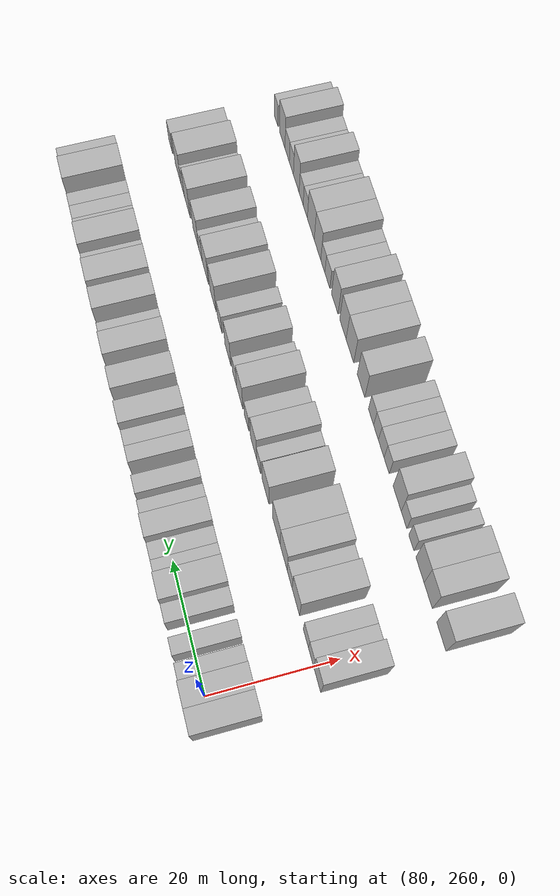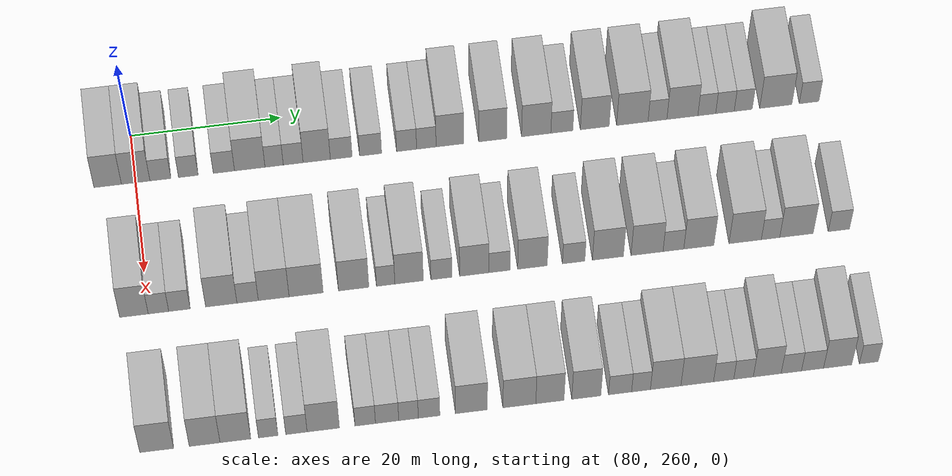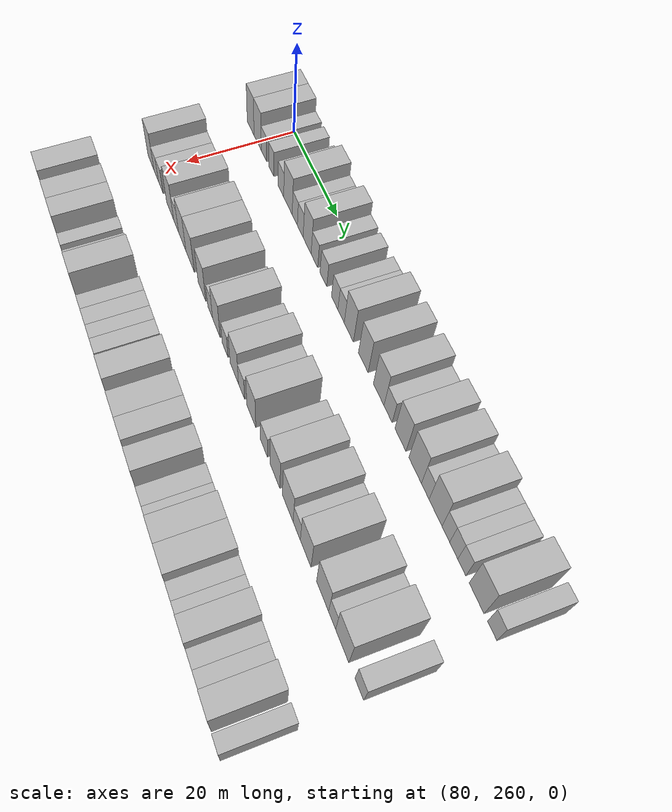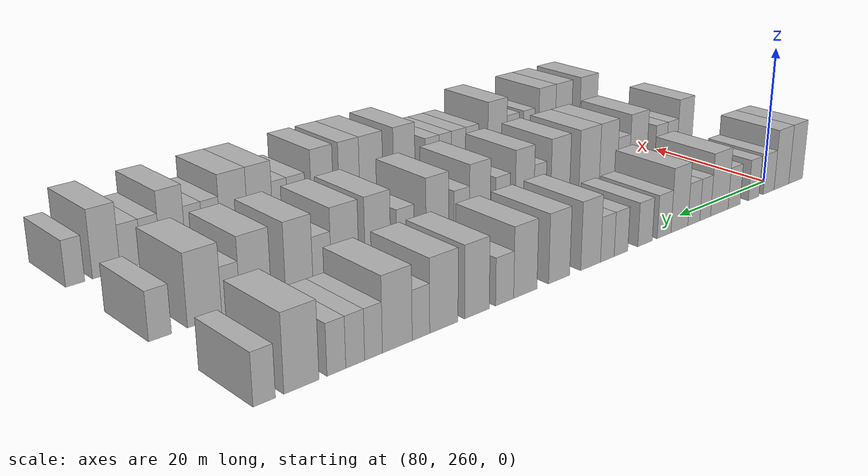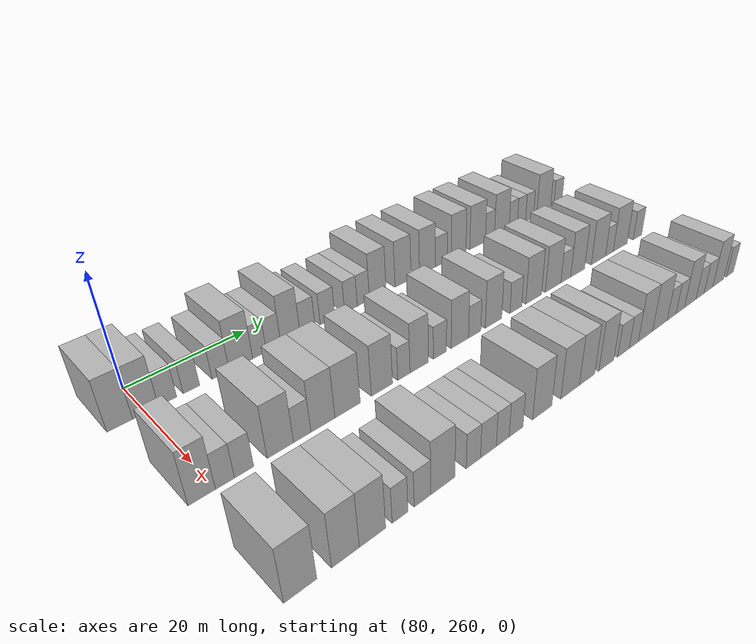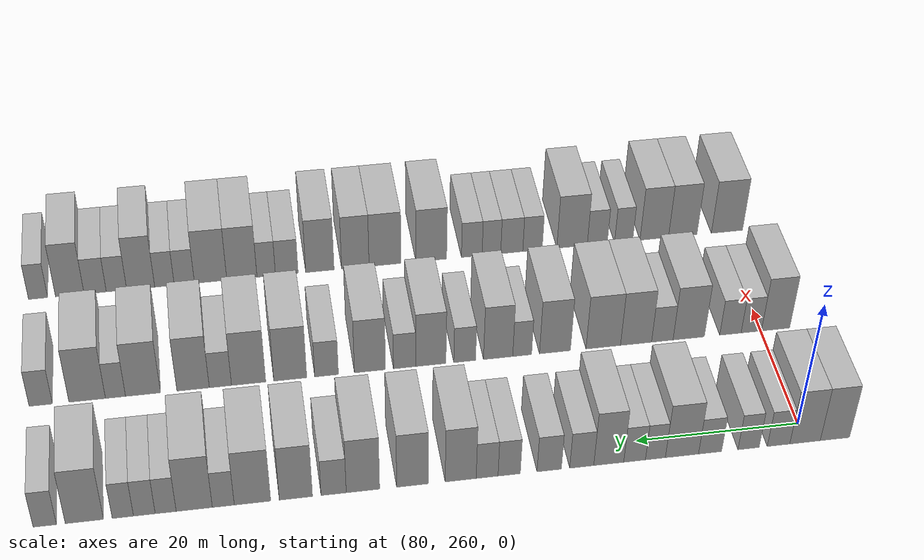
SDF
<sdf version="1.6">
 <world name="default">
  <model name="building_662">
   <static>1</static>
   <pose>82.0000 256.3636 0 0.000000 0.000000 0.000000</pose>
   <link name="link">
    <pose>0 0 4.50 0 0 0</pose>
    <collision name="collision"><geometry><box><size>10.0000 3.6264 9.0000</size></box></geometry></collision>
    <visual name="visual">
     <cast_shadows>0</cast_shadows>
     <geometry><box><size>10.0000 3.6264 9.0000</size></box></geometry>
     <material>
      <script>
       <uri>model://HANNAS_wall/materials/scripts</uri>
       <uri>model://HANNAS_wall/materials/textures</uri>
       <name>vrc/HANNAS_wall</name>
      </script>
     </material>
    </visual>
   </link>
  </model>
  <model name="building_663">
   <static>1</static>
   <pose>82.0000 260.0612 0 0.000000 0.000000 0.000000</pose>
   <link name="link">
    <pose>0 0 4.50 0 0 0</pose>
    <collision name="collision"><geometry><box><size>10.0000 3.7688 9.0000</size></box></geometry></collision>
    <visual name="visual">
     <cast_shadows>0</cast_shadows>
     <geometry><box><size>10.0000 3.7688 9.0000</size></box></geometry>
     <material>
      <script>
       <uri>model://HANNAS_wall/materials/scripts</uri>
       <uri>model://HANNAS_wall/materials/textures</uri>
       <name>vrc/HANNAS_wall</name>
      </script>
     </material>
    </visual>
   </link>
  </model>
  <model name="building_664">
   <static>1</static>
   <pose>82.0000 263.3328 0 0.000000 0.000000 0.000000</pose>
   <link name="link">
    <pose>0 0 3.00 0 0 0</pose>
    <collision name="collision"><geometry><box><size>10.0000 2.7742 6.0000</size></box></geometry></collision>
    <visual name="visual">
     <cast_shadows>0</cast_shadows>
     <geometry><box><size>10.0000 2.7742 6.0000</size></box></geometry>
     <material>
      <script>
       <uri>model://HANNAS_wall/materials/scripts</uri>
       <uri>model://HANNAS_wall/materials/textures</uri>
       <name>vrc/HANNAS_wall</name>
      </script>
     </material>
    </visual>
   </link>
  </model>
  <model name="building_665">
   <static>1</static>
   <pose>82.0000 267.0202 0 0.000000 0.000000 0.000000</pose>
   <link name="link">
    <pose>0 0 3.00 0 0 0</pose>
    <collision name="collision"><geometry><box><size>10.0000 2.6006 6.0000</size></box></geometry></collision>
    <visual name="visual">
     <cast_shadows>0</cast_shadows>
     <geometry><box><size>10.0000 2.6006 6.0000</size></box></geometry>
     <material>
      <script>
       <uri>model://HANNAS_wall/materials/scripts</uri>
       <uri>model://HANNAS_wall/materials/textures</uri>
       <name>vrc/HANNAS_wall</name>
      </script>
     </material>
    </visual>
   </link>
  </model>
  <model name="building_666">
   <static>1</static>
   <pose>82.0000 271.7305 0 0.000000 0.000000 0.000000</pose>
   <link name="link">
    <pose>0 0 3.00 0 0 0</pose>
    <collision name="collision"><geometry><box><size>10.0000 2.8201 6.0000</size></box></geometry></collision>
    <visual name="visual">
     <cast_shadows>0</cast_shadows>
     <geometry><box><size>10.0000 2.8201 6.0000</size></box></geometry>
     <material>
      <script>
       <uri>model://HANNAS_wall/materials/scripts</uri>
       <uri>model://HANNAS_wall/materials/textures</uri>
       <name>vrc/HANNAS_wall</name>
      </script>
     </material>
    </visual>
   </link>
  </model>
  <model name="building_667">
   <static>1</static>
   <pose>82.0000 275.1587 0 0.000000 0.000000 0.000000</pose>
   <link name="link">
    <pose>0 0 4.50 0 0 0</pose>
    <collision name="collision"><geometry><box><size>10.0000 4.0365 9.0000</size></box></geometry></collision>
    <visual name="visual">
     <cast_shadows>0</cast_shadows>
     <geometry><box><size>10.0000 4.0365 9.0000</size></box></geometry>
     <material>
      <script>
       <uri>model://HANNAS_wall/materials/scripts</uri>
       <uri>model://HANNAS_wall/materials/textures</uri>
       <name>vrc/HANNAS_wall</name>
      </script>
     </material>
    </visual>
   </link>
  </model>
  <model name="building_668">
   <static>1</static>
   <pose>82.0000 278.3872 0 0.000000 0.000000 0.000000</pose>
   <link name="link">
    <pose>0 0 3.00 0 0 0</pose>
    <collision name="collision"><geometry><box><size>10.0000 2.4206 6.0000</size></box></geometry></collision>
    <visual name="visual">
     <cast_shadows>0</cast_shadows>
     <geometry><box><size>10.0000 2.4206 6.0000</size></box></geometry>
     <material>
      <script>
       <uri>model://HANNAS_wall/materials/scripts</uri>
       <uri>model://HANNAS_wall/materials/textures</uri>
       <name>vrc/HANNAS_wall</name>
      </script>
     </material>
    </visual>
   </link>
  </model>
  <model name="building_669">
   <static>1</static>
   <pose>82.0000 280.9133 0 0.000000 0.000000 0.000000</pose>
   <link name="link">
    <pose>0 0 3.00 0 0 0</pose>
    <collision name="collision"><geometry><box><size>10.0000 2.6314 6.0000</size></box></geometry></collision>
    <visual name="visual">
     <cast_shadows>0</cast_shadows>
     <geometry><box><size>10.0000 2.6314 6.0000</size></box></geometry>
     <material>
      <script>
       <uri>model://HANNAS_wall/materials/scripts</uri>
       <uri>model://HANNAS_wall/materials/textures</uri>
       <name>vrc/HANNAS_wall</name>
      </script>
     </material>
    </visual>
   </link>
  </model>
  <model name="building_670">
   <static>1</static>
   <pose>82.0000 284.0356 0 0.000000 0.000000 0.000000</pose>
   <link name="link">
    <pose>0 0 4.50 0 0 0</pose>
    <collision name="collision"><geometry><box><size>10.0000 3.6133 9.0000</size></box></geometry></collision>
    <visual name="visual">
     <cast_shadows>0</cast_shadows>
     <geometry><box><size>10.0000 3.6133 9.0000</size></box></geometry>
     <material>
      <script>
       <uri>model://HANNAS_wall/materials/scripts</uri>
       <uri>model://HANNAS_wall/materials/textures</uri>
       <name>vrc/HANNAS_wall</name>
      </script>
     </material>
    </visual>
   </link>
  </model>
  <model name="building_671">
   <static>1</static>
   <pose>82.0000 287.2892 0 0.000000 0.000000 0.000000</pose>
   <link name="link">
    <pose>0 0 3.00 0 0 0</pose>
    <collision name="collision"><geometry><box><size>10.0000 2.8939 6.0000</size></box></geometry></collision>
    <visual name="visual">
     <cast_shadows>0</cast_shadows>
     <geometry><box><size>10.0000 2.8939 6.0000</size></box></geometry>
     <material>
      <script>
       <uri>model://HANNAS_wall/materials/scripts</uri>
       <uri>model://HANNAS_wall/materials/textures</uri>
       <name>vrc/HANNAS_wall</name>
      </script>
     </material>
    </visual>
   </link>
  </model>
  <model name="building_672">
   <static>1</static>
   <pose>82.0000 291.1971 0 0.000000 0.000000 0.000000</pose>
   <link name="link">
    <pose>0 0 3.00 0 0 0</pose>
    <collision name="collision"><geometry><box><size>10.0000 2.9220 6.0000</size></box></geometry></collision>
    <visual name="visual">
     <cast_shadows>0</cast_shadows>
     <geometry><box><size>10.0000 2.9220 6.0000</size></box></geometry>
     <material>
      <script>
       <uri>model://HANNAS_wall/materials/scripts</uri>
       <uri>model://HANNAS_wall/materials/textures</uri>
       <name>vrc/HANNAS_wall</name>
      </script>
     </material>
    </visual>
   </link>
  </model>
  <model name="building_673">
   <static>1</static>
   <pose>82.0000 295.9860 0 0.000000 0.000000 0.000000</pose>
   <link name="link">
    <pose>0 0 3.00 0 0 0</pose>
    <collision name="collision"><geometry><box><size>10.0000 2.6557 6.0000</size></box></geometry></collision>
    <visual name="visual">
     <cast_shadows>0</cast_shadows>
     <geometry><box><size>10.0000 2.6557 6.0000</size></box></geometry>
     <material>
      <script>
       <uri>model://HANNAS_wall/materials/scripts</uri>
       <uri>model://HANNAS_wall/materials/textures</uri>
       <name>vrc/HANNAS_wall</name>
      </script>
     </material>
    </visual>
   </link>
  </model>
  <model name="building_674">
   <static>1</static>
   <pose>82.0000 298.6152 0 0.000000 0.000000 0.000000</pose>
   <link name="link">
    <pose>0 0 3.00 0 0 0</pose>
    <collision name="collision"><geometry><box><size>10.0000 2.6028 6.0000</size></box></geometry></collision>
    <visual name="visual">
     <cast_shadows>0</cast_shadows>
     <geometry><box><size>10.0000 2.6028 6.0000</size></box></geometry>
     <material>
      <script>
       <uri>model://HANNAS_wall/materials/scripts</uri>
       <uri>model://HANNAS_wall/materials/textures</uri>
       <name>vrc/HANNAS_wall</name>
      </script>
     </material>
    </visual>
   </link>
  </model>
  <model name="building_675">
   <static>1</static>
   <pose>82.0000 301.7571 0 0.000000 0.000000 0.000000</pose>
   <link name="link">
    <pose>0 0 4.50 0 0 0</pose>
    <collision name="collision"><geometry><box><size>10.0000 3.6809 9.0000</size></box></geometry></collision>
    <visual name="visual">
     <cast_shadows>0</cast_shadows>
     <geometry><box><size>10.0000 3.6809 9.0000</size></box></geometry>
     <material>
      <script>
       <uri>model://HANNAS_wall/materials/scripts</uri>
       <uri>model://HANNAS_wall/materials/textures</uri>
       <name>vrc/HANNAS_wall</name>
      </script>
     </material>
    </visual>
   </link>
  </model>
  <model name="building_676">
   <static>1</static>
   <pose>82.0000 307.4612 0 0.000000 0.000000 0.000000</pose>
   <link name="link">
    <pose>0 0 4.50 0 0 0</pose>
    <collision name="collision"><geometry><box><size>10.0000 3.7272 9.0000</size></box></geometry></collision>
    <visual name="visual">
     <cast_shadows>0</cast_shadows>
     <geometry><box><size>10.0000 3.7272 9.0000</size></box></geometry>
     <material>
      <script>
       <uri>model://HANNAS_wall/materials/scripts</uri>
       <uri>model://HANNAS_wall/materials/textures</uri>
       <name>vrc/HANNAS_wall</name>
      </script>
     </material>
    </visual>
   </link>
  </model>
  <model name="building_677">
   <static>1</static>
   <pose>82.0000 313.2815 0 0.000000 0.000000 0.000000</pose>
   <link name="link">
    <pose>0 0 4.50 0 0 0</pose>
    <collision name="collision"><geometry><box><size>10.0000 3.9135 9.0000</size></box></geometry></collision>
    <visual name="visual">
     <cast_shadows>0</cast_shadows>
     <geometry><box><size>10.0000 3.9135 9.0000</size></box></geometry>
     <material>
      <script>
       <uri>model://HANNAS_wall/materials/scripts</uri>
       <uri>model://HANNAS_wall/materials/textures</uri>
       <name>vrc/HANNAS_wall</name>
      </script>
     </material>
    </visual>
   </link>
  </model>
  <model name="building_678">
   <static>1</static>
   <pose>82.0000 316.7109 0 0.000000 0.000000 0.000000</pose>
   <link name="link">
    <pose>0 0 3.00 0 0 0</pose>
    <collision name="collision"><geometry><box><size>10.0000 2.9453 6.0000</size></box></geometry></collision>
    <visual name="visual">
     <cast_shadows>0</cast_shadows>
     <geometry><box><size>10.0000 2.9453 6.0000</size></box></geometry>
     <material>
      <script>
       <uri>model://HANNAS_wall/materials/scripts</uri>
       <uri>model://HANNAS_wall/materials/textures</uri>
       <name>vrc/HANNAS_wall</name>
      </script>
     </material>
    </visual>
   </link>
  </model>
  <model name="building_679">
   <static>1</static>
   <pose>82.0000 321.1144 0 0.000000 0.000000 0.000000</pose>
   <link name="link">
    <pose>0 0 4.50 0 0 0</pose>
    <collision name="collision"><geometry><box><size>10.0000 3.8616 9.0000</size></box></geometry></collision>
    <visual name="visual">
     <cast_shadows>0</cast_shadows>
     <geometry><box><size>10.0000 3.8616 9.0000</size></box></geometry>
     <material>
      <script>
       <uri>model://HANNAS_wall/materials/scripts</uri>
       <uri>model://HANNAS_wall/materials/textures</uri>
       <name>vrc/HANNAS_wall</name>
      </script>
     </material>
    </visual>
   </link>
  </model>
  <model name="building_680">
   <static>1</static>
   <pose>82.0000 326.1539 0 0.000000 0.000000 0.000000</pose>
   <link name="link">
    <pose>0 0 4.50 0 0 0</pose>
    <collision name="collision"><geometry><box><size>10.0000 4.2174 9.0000</size></box></geometry></collision>
    <visual name="visual">
     <cast_shadows>0</cast_shadows>
     <geometry><box><size>10.0000 4.2174 9.0000</size></box></geometry>
     <material>
      <script>
       <uri>model://HANNAS_wall/materials/scripts</uri>
       <uri>model://HANNAS_wall/materials/textures</uri>
       <name>vrc/HANNAS_wall</name>
      </script>
     </material>
    </visual>
   </link>
  </model>
  <model name="building_681">
   <static>1</static>
   <pose>82.0000 329.5282 0 0.000000 0.000000 0.000000</pose>
   <link name="link">
    <pose>0 0 3.00 0 0 0</pose>
    <collision name="collision"><geometry><box><size>10.0000 2.5312 6.0000</size></box></geometry></collision>
    <visual name="visual">
     <cast_shadows>0</cast_shadows>
     <geometry><box><size>10.0000 2.5312 6.0000</size></box></geometry>
     <material>
      <script>
       <uri>model://HANNAS_wall/materials/scripts</uri>
       <uri>model://HANNAS_wall/materials/textures</uri>
       <name>vrc/HANNAS_wall</name>
      </script>
     </material>
    </visual>
   </link>
  </model>
  <model name="building_682">
   <static>1</static>
   <pose>82.0000 332.8726 0 0.000000 0.000000 0.000000</pose>
   <link name="link">
    <pose>0 0 4.50 0 0 0</pose>
    <collision name="collision"><geometry><box><size>10.0000 4.1577 9.0000</size></box></geometry></collision>
    <visual name="visual">
     <cast_shadows>0</cast_shadows>
     <geometry><box><size>10.0000 4.1577 9.0000</size></box></geometry>
     <material>
      <script>
       <uri>model://HANNAS_wall/materials/scripts</uri>
       <uri>model://HANNAS_wall/materials/textures</uri>
       <name>vrc/HANNAS_wall</name>
      </script>
     </material>
    </visual>
   </link>
  </model>
  <model name="building_683">
   <static>1</static>
   <pose>82.0000 336.1519 0 0.000000 0.000000 0.000000</pose>
   <link name="link">
    <pose>0 0 3.00 0 0 0</pose>
    <collision name="collision"><geometry><box><size>10.0000 2.4008 6.0000</size></box></geometry></collision>
    <visual name="visual">
     <cast_shadows>0</cast_shadows>
     <geometry><box><size>10.0000 2.4008 6.0000</size></box></geometry>
     <material>
      <script>
       <uri>model://HANNAS_wall/materials/scripts</uri>
       <uri>model://HANNAS_wall/materials/textures</uri>
       <name>vrc/HANNAS_wall</name>
      </script>
     </material>
    </visual>
   </link>
  </model>
  <model name="building_684">
   <static>1</static>
   <pose>82.0000 338.5974 0 0.000000 0.000000 0.000000</pose>
   <link name="link">
    <pose>0 0 3.00 0 0 0</pose>
    <collision name="collision"><geometry><box><size>10.0000 2.4902 6.0000</size></box></geometry></collision>
    <visual name="visual">
     <cast_shadows>0</cast_shadows>
     <geometry><box><size>10.0000 2.4902 6.0000</size></box></geometry>
     <material>
      <script>
       <uri>model://HANNAS_wall/materials/scripts</uri>
       <uri>model://HANNAS_wall/materials/textures</uri>
       <name>vrc/HANNAS_wall</name>
      </script>
     </material>
    </visual>
   </link>
  </model>
  <model name="building_685">
   <static>1</static>
   <pose>82.0000 341.0563 0 0.000000 0.000000 0.000000</pose>
   <link name="link">
    <pose>0 0 3.00 0 0 0</pose>
    <collision name="collision"><geometry><box><size>10.0000 2.4276 6.0000</size></box></geometry></collision>
    <visual name="visual">
     <cast_shadows>0</cast_shadows>
     <geometry><box><size>10.0000 2.4276 6.0000</size></box></geometry>
     <material>
      <script>
       <uri>model://HANNAS_wall/materials/scripts</uri>
       <uri>model://HANNAS_wall/materials/textures</uri>
       <name>vrc/HANNAS_wall</name>
      </script>
     </material>
    </visual>
   </link>
  </model>
  <model name="building_686">
   <static>1</static>
   <pose>82.0000 345.4383 0 0.000000 0.000000 0.000000</pose>
   <link name="link">
    <pose>0 0 4.50 0 0 0</pose>
    <collision name="collision"><geometry><box><size>10.0000 4.3365 9.0000</size></box></geometry></collision>
    <visual name="visual">
     <cast_shadows>0</cast_shadows>
     <geometry><box><size>10.0000 4.3365 9.0000</size></box></geometry>
     <material>
      <script>
       <uri>model://HANNAS_wall/materials/scripts</uri>
       <uri>model://HANNAS_wall/materials/textures</uri>
       <name>vrc/HANNAS_wall</name>
      </script>
     </material>
    </visual>
   </link>
  </model>
  <model name="building_687">
   <static>1</static>
   <pose>82.0000 349.9293 0 0.000000 0.000000 0.000000</pose>
   <link name="link">
    <pose>0 0 3.00 0 0 0</pose>
    <collision name="collision"><geometry><box><size>10.0000 2.6455 6.0000</size></box></geometry></collision>
    <visual name="visual">
     <cast_shadows>0</cast_shadows>
     <geometry><box><size>10.0000 2.6455 6.0000</size></box></geometry>
     <material>
      <script>
       <uri>model://HANNAS_wall/materials/scripts</uri>
       <uri>model://HANNAS_wall/materials/textures</uri>
       <name>vrc/HANNAS_wall</name>
      </script>
     </material>
    </visual>
   </link>
  </model>
  <model name="building_836">
   <static>1</static>
   <pose>101.0000 258.0987 0 0.000000 0.000000 0.000000</pose>
   <link name="link">
    <pose>0 0 4.50 0 0 0</pose>
    <collision name="collision"><geometry><box><size>10.0000 3.7096 9.0000</size></box></geometry></collision>
    <visual name="visual">
     <cast_shadows>0</cast_shadows>
     <geometry><box><size>10.0000 3.7096 9.0000</size></box></geometry>
     <material>
      <script>
       <uri>model://HANNAS_wall/materials/scripts</uri>
       <uri>model://HANNAS_wall/materials/textures</uri>
       <name>vrc/HANNAS_wall</name>
      </script>
     </material>
    </visual>
   </link>
  </model>
  <model name="building_837">
   <static>1</static>
   <pose>101.0000 261.2831 0 0.000000 0.000000 0.000000</pose>
   <link name="link">
    <pose>0 0 3.00 0 0 0</pose>
    <collision name="collision"><geometry><box><size>10.0000 2.6592 6.0000</size></box></geometry></collision>
    <visual name="visual">
     <cast_shadows>0</cast_shadows>
     <geometry><box><size>10.0000 2.6592 6.0000</size></box></geometry>
     <material>
      <script>
       <uri>model://HANNAS_wall/materials/scripts</uri>
       <uri>model://HANNAS_wall/materials/textures</uri>
       <name>vrc/HANNAS_wall</name>
      </script>
     </material>
    </visual>
   </link>
  </model>
  <model name="building_838">
   <static>1</static>
   <pose>101.0000 264.0105 0 0.000000 0.000000 0.000000</pose>
   <link name="link">
    <pose>0 0 3.00 0 0 0</pose>
    <collision name="collision"><geometry><box><size>10.0000 2.7955 6.0000</size></box></geometry></collision>
    <visual name="visual">
     <cast_shadows>0</cast_shadows>
     <geometry><box><size>10.0000 2.7955 6.0000</size></box></geometry>
     <material>
      <script>
       <uri>model://HANNAS_wall/materials/scripts</uri>
       <uri>model://HANNAS_wall/materials/textures</uri>
       <name>vrc/HANNAS_wall</name>
      </script>
     </material>
    </visual>
   </link>
  </model>
  <model name="building_839">
   <static>1</static>
   <pose>101.0000 269.4473 0 0.000000 0.000000 0.000000</pose>
   <link name="link">
    <pose>0 0 4.50 0 0 0</pose>
    <collision name="collision"><geometry><box><size>10.0000 4.0781 9.0000</size></box></geometry></collision>
    <visual name="visual">
     <cast_shadows>0</cast_shadows>
     <geometry><box><size>10.0000 4.0781 9.0000</size></box></geometry>
     <material>
      <script>
       <uri>model://HANNAS_wall/materials/scripts</uri>
       <uri>model://HANNAS_wall/materials/textures</uri>
       <name>vrc/HANNAS_wall</name>
      </script>
     </material>
    </visual>
   </link>
  </model>
  <model name="building_840">
   <static>1</static>
   <pose>101.0000 272.8783 0 0.000000 0.000000 0.000000</pose>
   <link name="link">
    <pose>0 0 3.00 0 0 0</pose>
    <collision name="collision"><geometry><box><size>10.0000 2.7840 6.0000</size></box></geometry></collision>
    <visual name="visual">
     <cast_shadows>0</cast_shadows>
     <geometry><box><size>10.0000 2.7840 6.0000</size></box></geometry>
     <material>
      <script>
       <uri>model://HANNAS_wall/materials/scripts</uri>
       <uri>model://HANNAS_wall/materials/textures</uri>
       <name>vrc/HANNAS_wall</name>
      </script>
     </material>
    </visual>
   </link>
  </model>
  <model name="building_841">
   <static>1</static>
   <pose>101.0000 276.2749 0 0.000000 0.000000 0.000000</pose>
   <link name="link">
    <pose>0 0 4.50 0 0 0</pose>
    <collision name="collision"><geometry><box><size>10.0000 4.0090 9.0000</size></box></geometry></collision>
    <visual name="visual">
     <cast_shadows>0</cast_shadows>
     <geometry><box><size>10.0000 4.0090 9.0000</size></box></geometry>
     <material>
      <script>
       <uri>model://HANNAS_wall/materials/scripts</uri>
       <uri>model://HANNAS_wall/materials/textures</uri>
       <name>vrc/HANNAS_wall</name>
      </script>
     </material>
    </visual>
   </link>
  </model>
  <model name="building_842">
   <static>1</static>
   <pose>101.0000 280.5014 0 0.000000 0.000000 0.000000</pose>
   <link name="link">
    <pose>0 0 4.50 0 0 0</pose>
    <collision name="collision"><geometry><box><size>10.0000 4.4440 9.0000</size></box></geometry></collision>
    <visual name="visual">
     <cast_shadows>0</cast_shadows>
     <geometry><box><size>10.0000 4.4440 9.0000</size></box></geometry>
     <material>
      <script>
       <uri>model://HANNAS_wall/materials/scripts</uri>
       <uri>model://HANNAS_wall/materials/textures</uri>
       <name>vrc/HANNAS_wall</name>
      </script>
     </material>
    </visual>
   </link>
  </model>
  <model name="building_843">
   <static>1</static>
   <pose>101.0000 286.7053 0 0.000000 0.000000 0.000000</pose>
   <link name="link">
    <pose>0 0 4.50 0 0 0</pose>
    <collision name="collision"><geometry><box><size>10.0000 3.9637 9.0000</size></box></geometry></collision>
    <visual name="visual">
     <cast_shadows>0</cast_shadows>
     <geometry><box><size>10.0000 3.9637 9.0000</size></box></geometry>
     <material>
      <script>
       <uri>model://HANNAS_wall/materials/scripts</uri>
       <uri>model://HANNAS_wall/materials/textures</uri>
       <name>vrc/HANNAS_wall</name>
      </script>
     </material>
    </visual>
   </link>
  </model>
  <model name="building_844">
   <static>1</static>
   <pose>101.0000 290.8898 0 0.000000 0.000000 0.000000</pose>
   <link name="link">
    <pose>0 0 3.00 0 0 0</pose>
    <collision name="collision"><geometry><box><size>10.0000 2.4054 6.0000</size></box></geometry></collision>
    <visual name="visual">
     <cast_shadows>0</cast_shadows>
     <geometry><box><size>10.0000 2.4054 6.0000</size></box></geometry>
     <material>
      <script>
       <uri>model://HANNAS_wall/materials/scripts</uri>
       <uri>model://HANNAS_wall/materials/textures</uri>
       <name>vrc/HANNAS_wall</name>
      </script>
     </material>
    </visual>
   </link>
  </model>
  <model name="building_845">
   <static>1</static>
   <pose>101.0000 293.9519 0 0.000000 0.000000 0.000000</pose>
   <link name="link">
    <pose>0 0 4.50 0 0 0</pose>
    <collision name="collision"><geometry><box><size>10.0000 3.7187 9.0000</size></box></geometry></collision>
    <visual name="visual">
     <cast_shadows>0</cast_shadows>
     <geometry><box><size>10.0000 3.7187 9.0000</size></box></geometry>
     <material>
      <script>
       <uri>model://HANNAS_wall/materials/scripts</uri>
       <uri>model://HANNAS_wall/materials/textures</uri>
       <name>vrc/HANNAS_wall</name>
      </script>
     </material>
    </visual>
   </link>
  </model>
  <model name="building_846">
   <static>1</static>
   <pose>101.0000 298.1905 0 0.000000 0.000000 0.000000</pose>
   <link name="link">
    <pose>0 0 3.00 0 0 0</pose>
    <collision name="collision"><geometry><box><size>10.0000 2.7585 6.0000</size></box></geometry></collision>
    <visual name="visual">
     <cast_shadows>0</cast_shadows>
     <geometry><box><size>10.0000 2.7585 6.0000</size></box></geometry>
     <material>
      <script>
       <uri>model://HANNAS_wall/materials/scripts</uri>
       <uri>model://HANNAS_wall/materials/textures</uri>
       <name>vrc/HANNAS_wall</name>
      </script>
     </material>
    </visual>
   </link>
  </model>
  <model name="building_847">
   <static>1</static>
   <pose>101.0000 302.4835 0 0.000000 0.000000 0.000000</pose>
   <link name="link">
    <pose>0 0 4.50 0 0 0</pose>
    <collision name="collision"><geometry><box><size>10.0000 3.8274 9.0000</size></box></geometry></collision>
    <visual name="visual">
     <cast_shadows>0</cast_shadows>
     <geometry><box><size>10.0000 3.8274 9.0000</size></box></geometry>
     <material>
      <script>
       <uri>model://HANNAS_wall/materials/scripts</uri>
       <uri>model://HANNAS_wall/materials/textures</uri>
       <name>vrc/HANNAS_wall</name>
      </script>
     </material>
    </visual>
   </link>
  </model>
  <model name="building_848">
   <static>1</static>
   <pose>101.0000 305.7885 0 0.000000 0.000000 0.000000</pose>
   <link name="link">
    <pose>0 0 3.00 0 0 0</pose>
    <collision name="collision"><geometry><box><size>10.0000 2.7826 6.0000</size></box></geometry></collision>
    <visual name="visual">
     <cast_shadows>0</cast_shadows>
     <geometry><box><size>10.0000 2.7826 6.0000</size></box></geometry>
     <material>
      <script>
       <uri>model://HANNAS_wall/materials/scripts</uri>
       <uri>model://HANNAS_wall/materials/textures</uri>
       <name>vrc/HANNAS_wall</name>
      </script>
     </material>
    </visual>
   </link>
  </model>
  <model name="building_849">
   <static>1</static>
   <pose>101.0000 310.1236 0 0.000000 0.000000 0.000000</pose>
   <link name="link">
    <pose>0 0 4.50 0 0 0</pose>
    <collision name="collision"><geometry><box><size>10.0000 3.8875 9.0000</size></box></geometry></collision>
    <visual name="visual">
     <cast_shadows>0</cast_shadows>
     <geometry><box><size>10.0000 3.8875 9.0000</size></box></geometry>
     <material>
      <script>
       <uri>model://HANNAS_wall/materials/scripts</uri>
       <uri>model://HANNAS_wall/materials/textures</uri>
       <name>vrc/HANNAS_wall</name>
      </script>
     </material>
    </visual>
   </link>
  </model>
  <model name="building_850">
   <static>1</static>
   <pose>101.0000 315.5400 0 0.000000 0.000000 0.000000</pose>
   <link name="link">
    <pose>0 0 3.00 0 0 0</pose>
    <collision name="collision"><geometry><box><size>10.0000 2.9453 6.0000</size></box></geometry></collision>
    <visual name="visual">
     <cast_shadows>0</cast_shadows>
     <geometry><box><size>10.0000 2.9453 6.0000</size></box></geometry>
     <material>
      <script>
       <uri>model://HANNAS_wall/materials/scripts</uri>
       <uri>model://HANNAS_wall/materials/textures</uri>
       <name>vrc/HANNAS_wall</name>
      </script>
     </material>
    </visual>
   </link>
  </model>
  <model name="building_851">
   <static>1</static>
   <pose>101.0000 320.0551 0 0.000000 0.000000 0.000000</pose>
   <link name="link">
    <pose>0 0 4.50 0 0 0</pose>
    <collision name="collision"><geometry><box><size>10.0000 4.0850 9.0000</size></box></geometry></collision>
    <visual name="visual">
     <cast_shadows>0</cast_shadows>
     <geometry><box><size>10.0000 4.0850 9.0000</size></box></geometry>
     <material>
      <script>
       <uri>model://HANNAS_wall/materials/scripts</uri>
       <uri>model://HANNAS_wall/materials/textures</uri>
       <name>vrc/HANNAS_wall</name>
      </script>
     </material>
    </visual>
   </link>
  </model>
  <model name="building_852">
   <static>1</static>
   <pose>101.0000 325.2088 0 0.000000 0.000000 0.000000</pose>
   <link name="link">
    <pose>0 0 4.50 0 0 0</pose>
    <collision name="collision"><geometry><box><size>10.0000 4.2223 9.0000</size></box></geometry></collision>
    <visual name="visual">
     <cast_shadows>0</cast_shadows>
     <geometry><box><size>10.0000 4.2223 9.0000</size></box></geometry>
     <material>
      <script>
       <uri>model://HANNAS_wall/materials/scripts</uri>
       <uri>model://HANNAS_wall/materials/textures</uri>
       <name>vrc/HANNAS_wall</name>
      </script>
     </material>
    </visual>
   </link>
  </model>
  <model name="building_853">
   <static>1</static>
   <pose>101.0000 328.6884 0 0.000000 0.000000 0.000000</pose>
   <link name="link">
    <pose>0 0 3.00 0 0 0</pose>
    <collision name="collision"><geometry><box><size>10.0000 2.7369 6.0000</size></box></geometry></collision>
    <visual name="visual">
     <cast_shadows>0</cast_shadows>
     <geometry><box><size>10.0000 2.7369 6.0000</size></box></geometry>
     <material>
      <script>
       <uri>model://HANNAS_wall/materials/scripts</uri>
       <uri>model://HANNAS_wall/materials/textures</uri>
       <name>vrc/HANNAS_wall</name>
      </script>
     </material>
    </visual>
   </link>
  </model>
  <model name="building_854">
   <static>1</static>
   <pose>101.0000 332.0452 0 0.000000 0.000000 0.000000</pose>
   <link name="link">
    <pose>0 0 4.50 0 0 0</pose>
    <collision name="collision"><geometry><box><size>10.0000 3.9769 9.0000</size></box></geometry></collision>
    <visual name="visual">
     <cast_shadows>0</cast_shadows>
     <geometry><box><size>10.0000 3.9769 9.0000</size></box></geometry>
     <material>
      <script>
       <uri>model://HANNAS_wall/materials/scripts</uri>
       <uri>model://HANNAS_wall/materials/textures</uri>
       <name>vrc/HANNAS_wall</name>
      </script>
     </material>
    </visual>
   </link>
  </model>
  <model name="building_855">
   <static>1</static>
   <pose>101.0000 338.1712 0 0.000000 0.000000 0.000000</pose>
   <link name="link">
    <pose>0 0 4.50 0 0 0</pose>
    <collision name="collision"><geometry><box><size>10.0000 4.2751 9.0000</size></box></geometry></collision>
    <visual name="visual">
     <cast_shadows>0</cast_shadows>
     <geometry><box><size>10.0000 4.2751 9.0000</size></box></geometry>
     <material>
      <script>
       <uri>model://HANNAS_wall/materials/scripts</uri>
       <uri>model://HANNAS_wall/materials/textures</uri>
       <name>vrc/HANNAS_wall</name>
      </script>
     </material>
    </visual>
   </link>
  </model>
  <model name="building_856">
   <static>1</static>
   <pose>101.0000 341.5302 0 0.000000 0.000000 0.000000</pose>
   <link name="link">
    <pose>0 0 3.00 0 0 0</pose>
    <collision name="collision"><geometry><box><size>10.0000 2.4428 6.0000</size></box></geometry></collision>
    <visual name="visual">
     <cast_shadows>0</cast_shadows>
     <geometry><box><size>10.0000 2.4428 6.0000</size></box></geometry>
     <material>
      <script>
       <uri>model://HANNAS_wall/materials/scripts</uri>
       <uri>model://HANNAS_wall/materials/textures</uri>
       <name>vrc/HANNAS_wall</name>
      </script>
     </material>
    </visual>
   </link>
  </model>
  <model name="building_857">
   <static>1</static>
   <pose>101.0000 344.9636 0 0.000000 0.000000 0.000000</pose>
   <link name="link">
    <pose>0 0 4.50 0 0 0</pose>
    <collision name="collision"><geometry><box><size>10.0000 4.4240 9.0000</size></box></geometry></collision>
    <visual name="visual">
     <cast_shadows>0</cast_shadows>
     <geometry><box><size>10.0000 4.4240 9.0000</size></box></geometry>
     <material>
      <script>
       <uri>model://HANNAS_wall/materials/scripts</uri>
       <uri>model://HANNAS_wall/materials/textures</uri>
       <name>vrc/HANNAS_wall</name>
      </script>
     </material>
    </visual>
   </link>
  </model>
  <model name="building_858">
   <static>1</static>
   <pose>101.0000 350.5829 0 0.000000 0.000000 0.000000</pose>
   <link name="link">
    <pose>0 0 3.00 0 0 0</pose>
    <collision name="collision"><geometry><box><size>10.0000 2.8147 6.0000</size></box></geometry></collision>
    <visual name="visual">
     <cast_shadows>0</cast_shadows>
     <geometry><box><size>10.0000 2.8147 6.0000</size></box></geometry>
     <material>
      <script>
       <uri>model://HANNAS_wall/materials/scripts</uri>
       <uri>model://HANNAS_wall/materials/textures</uri>
       <name>vrc/HANNAS_wall</name>
      </script>
     </material>
    </visual>
   </link>
  </model>
  <model name="building_1012">
   <static>1</static>
   <pose>120.0000 259.2658 0 0.000000 0.000000 0.000000</pose>
   <link name="link">
    <pose>0 0 4.50 0 0 0</pose>
    <collision name="collision"><geometry><box><size>10.0000 4.3226 9.0000</size></box></geometry></collision>
    <visual name="visual">
     <cast_shadows>0</cast_shadows>
     <geometry><box><size>10.0000 4.3226 9.0000</size></box></geometry>
     <material>
      <script>
       <uri>model://HANNAS_wall/materials/scripts</uri>
       <uri>model://HANNAS_wall/materials/textures</uri>
       <name>vrc/HANNAS_wall</name>
      </script>
     </material>
    </visual>
   </link>
  </model>
  <model name="building_1013">
   <static>1</static>
   <pose>120.0000 265.3899 0 0.000000 0.000000 0.000000</pose>
   <link name="link">
    <pose>0 0 4.50 0 0 0</pose>
    <collision name="collision"><geometry><box><size>10.0000 3.9255 9.0000</size></box></geometry></collision>
    <visual name="visual">
     <cast_shadows>0</cast_shadows>
     <geometry><box><size>10.0000 3.9255 9.0000</size></box></geometry>
     <material>
      <script>
       <uri>model://HANNAS_wall/materials/scripts</uri>
       <uri>model://HANNAS_wall/materials/textures</uri>
       <name>vrc/HANNAS_wall</name>
      </script>
     </material>
    </visual>
   </link>
  </model>
  <model name="building_1014">
   <static>1</static>
   <pose>120.0000 269.3155 0 0.000000 0.000000 0.000000</pose>
   <link name="link">
    <pose>0 0 4.50 0 0 0</pose>
    <collision name="collision"><geometry><box><size>10.0000 3.9256 9.0000</size></box></geometry></collision>
    <visual name="visual">
     <cast_shadows>0</cast_shadows>
     <geometry><box><size>10.0000 3.9256 9.0000</size></box></geometry>
     <material>
      <script>
       <uri>model://HANNAS_wall/materials/scripts</uri>
       <uri>model://HANNAS_wall/materials/textures</uri>
       <name>vrc/HANNAS_wall</name>
      </script>
     </material>
    </visual>
   </link>
  </model>
  <model name="building_1015">
   <static>1</static>
   <pose>120.0000 273.5212 0 0.000000 0.000000 0.000000</pose>
   <link name="link">
    <pose>0 0 3.00 0 0 0</pose>
    <collision name="collision"><geometry><box><size>10.0000 2.4858 6.0000</size></box></geometry></collision>
    <visual name="visual">
     <cast_shadows>0</cast_shadows>
     <geometry><box><size>10.0000 2.4858 6.0000</size></box></geometry>
     <material>
      <script>
       <uri>model://HANNAS_wall/materials/scripts</uri>
       <uri>model://HANNAS_wall/materials/textures</uri>
       <name>vrc/HANNAS_wall</name>
      </script>
     </material>
    </visual>
   </link>
  </model>
  <model name="building_1016">
   <static>1</static>
   <pose>120.0000 277.1308 0 0.000000 0.000000 0.000000</pose>
   <link name="link">
    <pose>0 0 3.00 0 0 0</pose>
    <collision name="collision"><geometry><box><size>10.0000 2.7335 6.0000</size></box></geometry></collision>
    <visual name="visual">
     <cast_shadows>0</cast_shadows>
     <geometry><box><size>10.0000 2.7335 6.0000</size></box></geometry>
     <material>
      <script>
       <uri>model://HANNAS_wall/materials/scripts</uri>
       <uri>model://HANNAS_wall/materials/textures</uri>
       <name>vrc/HANNAS_wall</name>
      </script>
     </material>
    </visual>
   </link>
  </model>
  <model name="building_1017">
   <static>1</static>
   <pose>120.0000 280.5683 0 0.000000 0.000000 0.000000</pose>
   <link name="link">
    <pose>0 0 4.50 0 0 0</pose>
    <collision name="collision"><geometry><box><size>10.0000 4.1413 9.0000</size></box></geometry></collision>
    <visual name="visual">
     <cast_shadows>0</cast_shadows>
     <geometry><box><size>10.0000 4.1413 9.0000</size></box></geometry>
     <material>
      <script>
       <uri>model://HANNAS_wall/materials/scripts</uri>
       <uri>model://HANNAS_wall/materials/textures</uri>
       <name>vrc/HANNAS_wall</name>
      </script>
     </material>
    </visual>
   </link>
  </model>
  <model name="building_1018">
   <static>1</static>
   <pose>120.0000 285.9518 0 0.000000 0.000000 0.000000</pose>
   <link name="link">
    <pose>0 0 3.00 0 0 0</pose>
    <collision name="collision"><geometry><box><size>10.0000 2.6258 6.0000</size></box></geometry></collision>
    <visual name="visual">
     <cast_shadows>0</cast_shadows>
     <geometry><box><size>10.0000 2.6258 6.0000</size></box></geometry>
     <material>
      <script>
       <uri>model://HANNAS_wall/materials/scripts</uri>
       <uri>model://HANNAS_wall/materials/textures</uri>
       <name>vrc/HANNAS_wall</name>
      </script>
     </material>
    </visual>
   </link>
  </model>
  <model name="building_1019">
   <static>1</static>
   <pose>120.0000 288.7584 0 0.000000 0.000000 0.000000</pose>
   <link name="link">
    <pose>0 0 3.00 0 0 0</pose>
    <collision name="collision"><geometry><box><size>10.0000 2.9873 6.0000</size></box></geometry></collision>
    <visual name="visual">
     <cast_shadows>0</cast_shadows>
     <geometry><box><size>10.0000 2.9873 6.0000</size></box></geometry>
     <material>
      <script>
       <uri>model://HANNAS_wall/materials/scripts</uri>
       <uri>model://HANNAS_wall/materials/textures</uri>
       <name>vrc/HANNAS_wall</name>
      </script>
     </material>
    </visual>
   </link>
  </model>
  <model name="building_1020">
   <static>1</static>
   <pose>120.0000 291.5106 0 0.000000 0.000000 0.000000</pose>
   <link name="link">
    <pose>0 0 3.00 0 0 0</pose>
    <collision name="collision"><geometry><box><size>10.0000 2.5172 6.0000</size></box></geometry></collision>
    <visual name="visual">
     <cast_shadows>0</cast_shadows>
     <geometry><box><size>10.0000 2.5172 6.0000</size></box></geometry>
     <material>
      <script>
       <uri>model://HANNAS_wall/materials/scripts</uri>
       <uri>model://HANNAS_wall/materials/textures</uri>
       <name>vrc/HANNAS_wall</name>
      </script>
     </material>
    </visual>
   </link>
  </model>
  <model name="building_1021">
   <static>1</static>
   <pose>120.0000 294.1570 0 0.000000 0.000000 0.000000</pose>
   <link name="link">
    <pose>0 0 3.00 0 0 0</pose>
    <collision name="collision"><geometry><box><size>10.0000 2.7755 6.0000</size></box></geometry></collision>
    <visual name="visual">
     <cast_shadows>0</cast_shadows>
     <geometry><box><size>10.0000 2.7755 6.0000</size></box></geometry>
     <material>
      <script>
       <uri>model://HANNAS_wall/materials/scripts</uri>
       <uri>model://HANNAS_wall/materials/textures</uri>
       <name>vrc/HANNAS_wall</name>
      </script>
     </material>
    </visual>
   </link>
  </model>
  <model name="building_1022">
   <static>1</static>
   <pose>120.0000 299.6010 0 0.000000 0.000000 0.000000</pose>
   <link name="link">
    <pose>0 0 4.50 0 0 0</pose>
    <collision name="collision"><geometry><box><size>10.0000 4.1125 9.0000</size></box></geometry></collision>
    <visual name="visual">
     <cast_shadows>0</cast_shadows>
     <geometry><box><size>10.0000 4.1125 9.0000</size></box></geometry>
     <material>
      <script>
       <uri>model://HANNAS_wall/materials/scripts</uri>
       <uri>model://HANNAS_wall/materials/textures</uri>
       <name>vrc/HANNAS_wall</name>
      </script>
     </material>
    </visual>
   </link>
  </model>
  <model name="building_1023">
   <static>1</static>
   <pose>120.0000 305.7826 0 0.000000 0.000000 0.000000</pose>
   <link name="link">
    <pose>0 0 4.50 0 0 0</pose>
    <collision name="collision"><geometry><box><size>10.0000 4.2509 9.0000</size></box></geometry></collision>
    <visual name="visual">
     <cast_shadows>0</cast_shadows>
     <geometry><box><size>10.0000 4.2509 9.0000</size></box></geometry>
     <material>
      <script>
       <uri>model://HANNAS_wall/materials/scripts</uri>
       <uri>model://HANNAS_wall/materials/textures</uri>
       <name>vrc/HANNAS_wall</name>
      </script>
     </material>
    </visual>
   </link>
  </model>
  <model name="building_1024">
   <static>1</static>
   <pose>120.0000 309.7296 0 0.000000 0.000000 0.000000</pose>
   <link name="link">
    <pose>0 0 4.50 0 0 0</pose>
    <collision name="collision"><geometry><box><size>10.0000 3.6431 9.0000</size></box></geometry></collision>
    <visual name="visual">
     <cast_shadows>0</cast_shadows>
     <geometry><box><size>10.0000 3.6431 9.0000</size></box></geometry>
     <material>
      <script>
       <uri>model://HANNAS_wall/materials/scripts</uri>
       <uri>model://HANNAS_wall/materials/textures</uri>
       <name>vrc/HANNAS_wall</name>
      </script>
     </material>
    </visual>
   </link>
  </model>
  <model name="building_1025">
   <static>1</static>
   <pose>120.0000 314.4284 0 0.000000 0.000000 0.000000</pose>
   <link name="link">
    <pose>0 0 4.50 0 0 0</pose>
    <collision name="collision"><geometry><box><size>10.0000 3.7546 9.0000</size></box></geometry></collision>
    <visual name="visual">
     <cast_shadows>0</cast_shadows>
     <geometry><box><size>10.0000 3.7546 9.0000</size></box></geometry>
     <material>
      <script>
       <uri>model://HANNAS_wall/materials/scripts</uri>
       <uri>model://HANNAS_wall/materials/textures</uri>
       <name>vrc/HANNAS_wall</name>
      </script>
     </material>
    </visual>
   </link>
  </model>
  <model name="building_1026">
   <static>1</static>
   <pose>120.0000 318.7981 0 0.000000 0.000000 0.000000</pose>
   <link name="link">
    <pose>0 0 3.00 0 0 0</pose>
    <collision name="collision"><geometry><box><size>10.0000 2.9849 6.0000</size></box></geometry></collision>
    <visual name="visual">
     <cast_shadows>0</cast_shadows>
     <geometry><box><size>10.0000 2.9849 6.0000</size></box></geometry>
     <material>
      <script>
       <uri>model://HANNAS_wall/materials/scripts</uri>
       <uri>model://HANNAS_wall/materials/textures</uri>
       <name>vrc/HANNAS_wall</name>
      </script>
     </material>
    </visual>
   </link>
  </model>
  <model name="building_1027">
   <static>1</static>
   <pose>120.0000 321.5077 0 0.000000 0.000000 0.000000</pose>
   <link name="link">
    <pose>0 0 3.00 0 0 0</pose>
    <collision name="collision"><geometry><box><size>10.0000 2.4342 6.0000</size></box></geometry></collision>
    <visual name="visual">
     <cast_shadows>0</cast_shadows>
     <geometry><box><size>10.0000 2.4342 6.0000</size></box></geometry>
     <material>
      <script>
       <uri>model://HANNAS_wall/materials/scripts</uri>
       <uri>model://HANNAS_wall/materials/textures</uri>
       <name>vrc/HANNAS_wall</name>
      </script>
     </material>
    </visual>
   </link>
  </model>
  <model name="building_1028">
   <static>1</static>
   <pose>120.0000 324.7024 0 0.000000 0.000000 0.000000</pose>
   <link name="link">
    <pose>0 0 4.50 0 0 0</pose>
    <collision name="collision"><geometry><box><size>10.0000 3.9551 9.0000</size></box></geometry></collision>
    <visual name="visual">
     <cast_shadows>0</cast_shadows>
     <geometry><box><size>10.0000 3.9551 9.0000</size></box></geometry>
     <material>
      <script>
       <uri>model://HANNAS_wall/materials/scripts</uri>
       <uri>model://HANNAS_wall/materials/textures</uri>
       <name>vrc/HANNAS_wall</name>
      </script>
     </material>
    </visual>
   </link>
  </model>
  <model name="building_1029">
   <static>1</static>
   <pose>120.0000 328.7961 0 0.000000 0.000000 0.000000</pose>
   <link name="link">
    <pose>0 0 4.50 0 0 0</pose>
    <collision name="collision"><geometry><box><size>10.0000 4.2322 9.0000</size></box></geometry></collision>
    <visual name="visual">
     <cast_shadows>0</cast_shadows>
     <geometry><box><size>10.0000 4.2322 9.0000</size></box></geometry>
     <material>
      <script>
       <uri>model://HANNAS_wall/materials/scripts</uri>
       <uri>model://HANNAS_wall/materials/textures</uri>
       <name>vrc/HANNAS_wall</name>
      </script>
     </material>
    </visual>
   </link>
  </model>
  <model name="building_1030">
   <static>1</static>
   <pose>120.0000 332.2264 0 0.000000 0.000000 0.000000</pose>
   <link name="link">
    <pose>0 0 3.00 0 0 0</pose>
    <collision name="collision"><geometry><box><size>10.0000 2.6284 6.0000</size></box></geometry></collision>
    <visual name="visual">
     <cast_shadows>0</cast_shadows>
     <geometry><box><size>10.0000 2.6284 6.0000</size></box></geometry>
     <material>
      <script>
       <uri>model://HANNAS_wall/materials/scripts</uri>
       <uri>model://HANNAS_wall/materials/textures</uri>
       <name>vrc/HANNAS_wall</name>
      </script>
     </material>
    </visual>
   </link>
  </model>
  <model name="building_1031">
   <static>1</static>
   <pose>120.0000 334.8100 0 0.000000 0.000000 0.000000</pose>
   <link name="link">
    <pose>0 0 3.00 0 0 0</pose>
    <collision name="collision"><geometry><box><size>10.0000 2.5388 6.0000</size></box></geometry></collision>
    <visual name="visual">
     <cast_shadows>0</cast_shadows>
     <geometry><box><size>10.0000 2.5388 6.0000</size></box></geometry>
     <material>
      <script>
       <uri>model://HANNAS_wall/materials/scripts</uri>
       <uri>model://HANNAS_wall/materials/textures</uri>
       <name>vrc/HANNAS_wall</name>
      </script>
     </material>
    </visual>
   </link>
  </model>
  <model name="building_1032">
   <static>1</static>
   <pose>120.0000 337.8956 0 0.000000 0.000000 0.000000</pose>
   <link name="link">
    <pose>0 0 4.50 0 0 0</pose>
    <collision name="collision"><geometry><box><size>10.0000 3.6322 9.0000</size></box></geometry></collision>
    <visual name="visual">
     <cast_shadows>0</cast_shadows>
     <geometry><box><size>10.0000 3.6322 9.0000</size></box></geometry>
     <material>
      <script>
       <uri>model://HANNAS_wall/materials/scripts</uri>
       <uri>model://HANNAS_wall/materials/textures</uri>
       <name>vrc/HANNAS_wall</name>
      </script>
     </material>
    </visual>
   </link>
  </model>
  <model name="building_1033">
   <static>1</static>
   <pose>120.0000 341.0312 0 0.000000 0.000000 0.000000</pose>
   <link name="link">
    <pose>0 0 3.00 0 0 0</pose>
    <collision name="collision"><geometry><box><size>10.0000 2.6390 6.0000</size></box></geometry></collision>
    <visual name="visual">
     <cast_shadows>0</cast_shadows>
     <geometry><box><size>10.0000 2.6390 6.0000</size></box></geometry>
     <material>
      <script>
       <uri>model://HANNAS_wall/materials/scripts</uri>
       <uri>model://HANNAS_wall/materials/textures</uri>
       <name>vrc/HANNAS_wall</name>
      </script>
     </material>
    </visual>
   </link>
  </model>
  <model name="building_1034">
   <static>1</static>
   <pose>120.0000 343.7851 0 0.000000 0.000000 0.000000</pose>
   <link name="link">
    <pose>0 0 3.00 0 0 0</pose>
    <collision name="collision"><geometry><box><size>10.0000 2.8688 6.0000</size></box></geometry></collision>
    <visual name="visual">
     <cast_shadows>0</cast_shadows>
     <geometry><box><size>10.0000 2.8688 6.0000</size></box></geometry>
     <material>
      <script>
       <uri>model://HANNAS_wall/materials/scripts</uri>
       <uri>model://HANNAS_wall/materials/textures</uri>
       <name>vrc/HANNAS_wall</name>
      </script>
     </material>
    </visual>
   </link>
  </model>
  <model name="building_1035">
   <static>1</static>
   <pose>120.0000 347.0585 0 0.000000 0.000000 0.000000</pose>
   <link name="link">
    <pose>0 0 4.50 0 0 0</pose>
    <collision name="collision"><geometry><box><size>10.0000 3.6780 9.0000</size></box></geometry></collision>
    <visual name="visual">
     <cast_shadows>0</cast_shadows>
     <geometry><box><size>10.0000 3.6780 9.0000</size></box></geometry>
     <material>
      <script>
       <uri>model://HANNAS_wall/materials/scripts</uri>
       <uri>model://HANNAS_wall/materials/textures</uri>
       <name>vrc/HANNAS_wall</name>
      </script>
     </material>
    </visual>
   </link>
  </model>
  <model name="building_1036">
   <static>1</static>
   <pose>120.0000 351.1261 0 0.000000 0.000000 0.000000</pose>
   <link name="link">
    <pose>0 0 3.00 0 0 0</pose>
    <collision name="collision"><geometry><box><size>10.0000 2.4574 6.0000</size></box></geometry></collision>
    <visual name="visual">
     <cast_shadows>0</cast_shadows>
     <geometry><box><size>10.0000 2.4574 6.0000</size></box></geometry>
     <material>
      <script>
       <uri>model://HANNAS_wall/materials/scripts</uri>
       <uri>model://HANNAS_wall/materials/textures</uri>
       <name>vrc/HANNAS_wall</name>
      </script>
     </material>
    </visual>
   </link>
  </model>
 </world>
</sdf>
